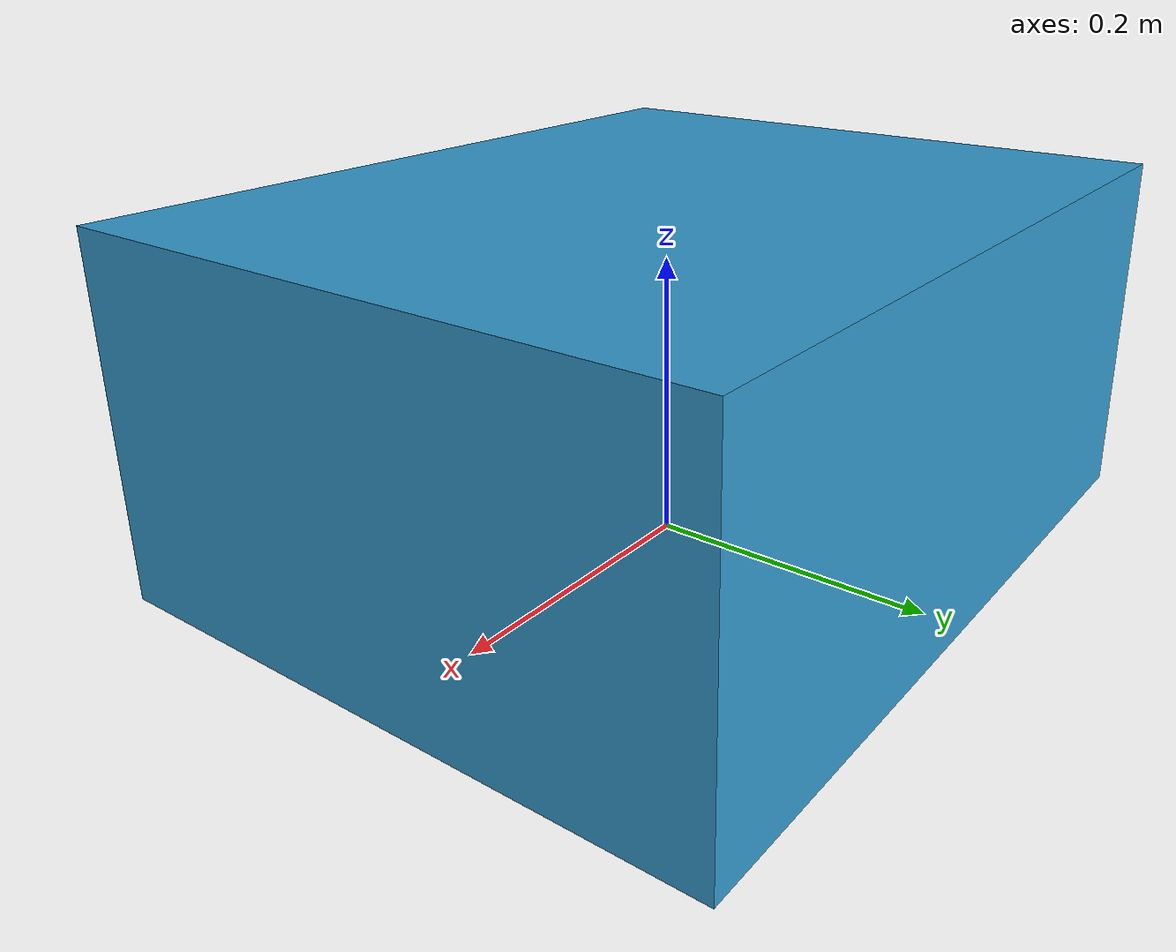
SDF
<?xml version="1.0" ?>
<sdf version="1.7">
  <model name="nicholas_bot">

    <static>false</static>

    <link name="base_link">

      <!-- Pose -->
      <pose>0 0 0.12 0 0 0</pose>

      <!-- Inertial properties -->
      <inertial>
        <mass>1.75</mass>
        <inertia>
          <ixx>0.015</ixx>
          <iyy>0.015</iyy>
          <izz>0.020</izz>
        </inertia>
      </inertial>

      <!-- Collision -->
      <collision name="collision_body">
        <geometry>
          <box>
            <size>0.55 0.45 0.25</size>
          </box>
        </geometry>
      </collision>

      <!-- Visual -->
      <visual name="visual_body">
        <geometry>
          <box>
            <size>0.55 0.45 0.25</size>
          </box>
        </geometry>

        <material>
          <ambient>0.2 0.6 0.8 1</ambient>
          <diffuse>0.2 0.6 0.8 1</diffuse>
        </material>
      </visual>

    </link>

    <!-- Simple mobility joint placeholder (makes it look non-template) -->
    <joint name="base_joint" type="fixed">
      <parent>world</parent>
      <child>base_link</child>
    </joint>

  </model>
</sdf>
